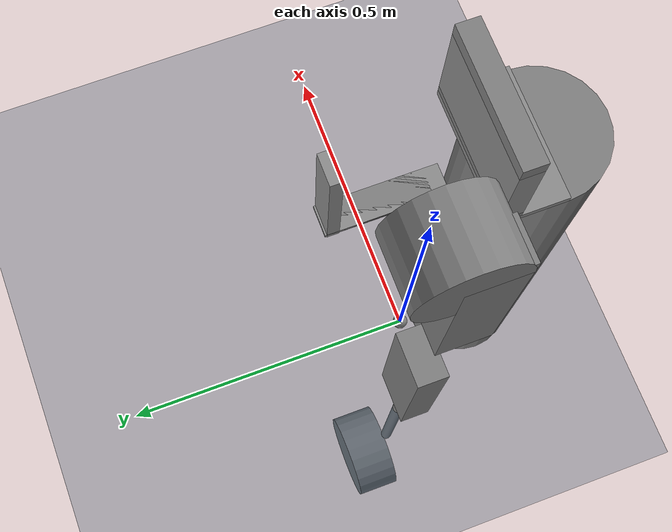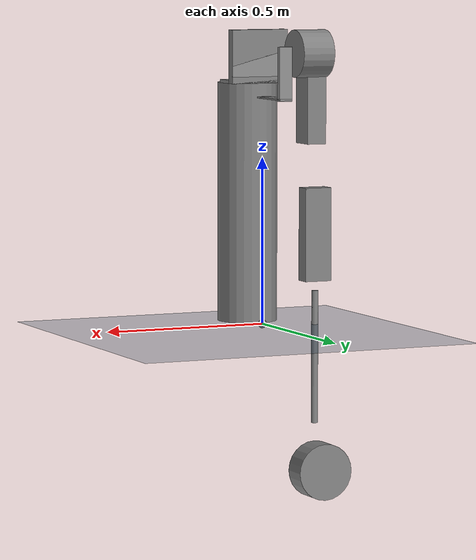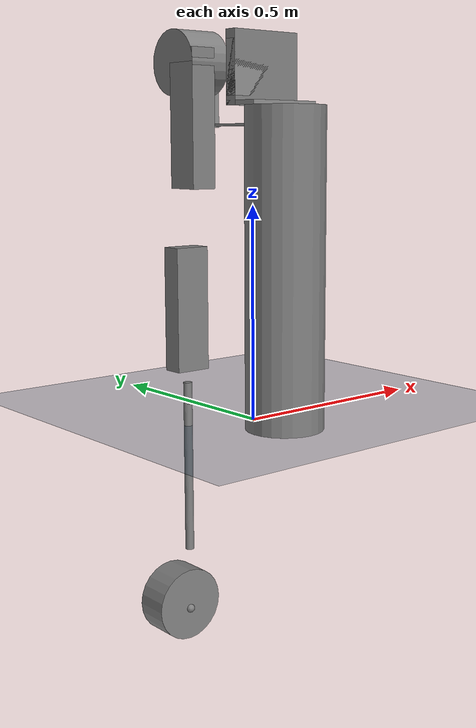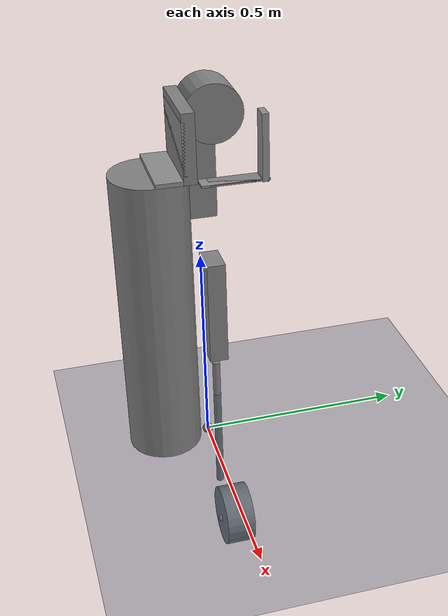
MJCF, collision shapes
<mujoco model="KirinApollo_scene">
  <include file="KirinApollo.xml"/>
  <statistic center="0 0 0.1" extent="0.8"/>

  <visual>
    <map force="0.1" zfar="30"/>
    <rgba haze="0.15 0.25 0.35 1"/>
    <quality shadowsize="2048"/>
    <global offwidth="800" offheight="800"/>
  </visual>

  <default>
    <default class="KirinApollo_scene">
      <default class="visual_ball">
        <geom type="mesh" contype="0" conaffinity="0" group="2"/>
        <default class="ball">
            <geom material="ball"/>
        </default>
      </default>

      <default class="collision2">
          <geom contype="1" conaffinity="15" group="3" solref="0.001 0.62"  solimp="0.9 0.95"/>
      </default>
    </default>
  </default>

  <asset>
    <texture type="skybox" builtin="gradient" rgb1="0.3 0.5 0.7" rgb2="0 0 0" width="512" height="3072"/>
    <texture type="2d" name="groundplane" builtin="checker" mark="edge"
      rgb1="0.2 0.3 0.4" rgb2="0.1 0.2 0.3"
      markrgb="0.8 0.8 0.8" width="300" height="300"/>
    <material name="groundplane" texture="groundplane" texuniform="true" texrepeat="5 5" reflectance="0.2"/>

    <material name="ball" specular="0" shininess="0.25" rgba="1.0 0.9 0.0 1"/>
    <mesh   name="badminton"                          file="Shutt.STL" />
  </asset>

  <worldbody>
    <light pos="0 0 1.5" dir="0 0 -1" directional="true" castshadow="false"/>
    <geom name="floor" pos="0 0 0" size="0 0 .125" type="plane" contype="1" conaffinity="3" material="groundplane" solimp="0.005 1"  condim="6" friction="0.4 0.6 0.8"/>
    <body name="Shutt" pos="0 0.0 0.0" childclass="KirinApollo_scene" euler=" 0 0 0">
        <geom class="ball" mesh="badminton"/>
        <geom class="collision2" name="shutt" type="sphere" size="0.013" pos="0 0.0 0" friction="0.4 0.6 0.8" condim="6"/>
        <site name="ShuttIMU" size="0.01" pos="0 0.0 0" group="0"/>
        <inertial pos="0.0 0.0 0.0" mass="0.006"  diaginertia="0.000001  0.000001  0.000001"/>
        <joint name="freeball"  pos="0 0 0" type="free" damping="0.0"/>

    </body>

  </worldbody>

  <sensor>
      <accelerometer name="ShuttAcc" site="ShuttIMU" noise="1e-2"/>
      <gyro name="ShuttGyro" site="ShuttIMU" noise="5e-4"/>
      <velocimeter name="ShuttVel" site="ShuttIMU" noise="5e-4"/>
      <touch name="ShuttTouch" site="ShuttIMU"/>
  </sensor>

</mujoco>

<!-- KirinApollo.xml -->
<mujoco model="KirinApollo">

  <compiler eulerseq="xyz" angle="radian" meshdir="meshes" texturedir="meshes" autolimits="true"/>
  <option timestep="0.001"/>

  <default>
    <default class="KirinApollo">
      <default class="visual">
          <geom type="mesh" contype="0" conaffinity="0" group="2"/>
          <default class="abad_pitch">
            <geom material="abad_pitch"/>
          </default>
          <default class="link_upper">
            <geom material="link_upper"/>
          </default>
          <default class="link_low">
            <geom material="link_low"/>
          </default>
          <default class="racket">
            <geom material="racket"/>
          </default>
      </default>

      <default class="collision">
          <geom condim="3"  group="3"  solref="0.001 0.6"  solimp="0.9 0.95"/>
          <default class="base_collision">
              <!-- 0001 and 0110 -->
              <geom contype="1" conaffinity="6"/>
          </default>
          <default class="upper_collision">
              <!-- 0010 and 0001 -->
              <geom contype="2" conaffinity="1"/>
          </default>
          <default class="lower_collision">
              <!-- 0100 and 1010 -->
              <geom contype="4" conaffinity="10"/>
          </default>
          <default class="racket_collision">
              <!-- 1000 and 0111 -->
              <geom contype="8" conaffinity="7"/>
          </default>
      </default>

      <!--
          1、max speed，rpm
          2、critical speed，rpm
          3、inertia of motor，kgm^2
      -->
      <default class="Shoulder_motor_24_roll">
        <motor ctrlrange="-15 15" user="2425 1604 0.0003"/>
      </default>
      <default class="Shoulder_motor_24_pitch">
        <motor ctrlrange="-15 15" user="2425 1604 0.0003"/>
      </default>
      <default class="Elbow_motor_15">
        <motor ctrlrange="-15 15" user="2425 1604 0.0003"/>
      </default>
      <default class="Wrist_motor_10_pitch">
        <motor ctrlrange="-2.3 2.3" user="4150 3600 0.000048"/>
      </default>
    </default>
  </default>

  <asset>

    <material name="abad_pitch" specular="0" shininess="0.25" rgba="0.55 0.55 0.55 1"/>
    <material name="link_upper" specular="0" shininess="0.25" rgba="0.345 0.725 1 1"/>
    <material name="link_low" specular="0" shininess="0.25" rgba="0.345 0.725 0.467 1"/>
    <material name="motor" specular="0" shininess="0.25" rgba="0.2 0.2 0.2 1"/>
    <material name="racket" specular="0" shininess="0.25" rgba="0.94 0.94 0.94 1"/>

    <mesh   name="Shoulder"                      file="FL_Hip.stl" />
    <mesh   name="UpperArm"                      file="FL_Thigh.stl"/>
    <mesh   name="ForeArm"                       file="forearm.STL"/>
    <mesh   name="Racket"                        file="racket.STL" />
  </asset>

  <worldbody>
    <body name="Body" pos="0.0 -0.11 0.0" childclass="KirinApollo" euler=" 0 0 0">

        <light name="spotlight" mode="track" pos="0 0 3" dir="0 0 -1"  castshadow="false"/>
        <light name="front" mode="track" pos="3 0.2 1.5" dir="-1 0 0" castshadow="false"/>
        <geom class="base_collision" name="base_pillar" type="cylinder" size="0.09 0.36" pos="0 0 0.36"/>
        <geom class="abad_pitch" type="box" size="0.09 0.046 0.005" pos="0 0.046 0.725"/>
        <geom class="abad_pitch" type="box" size="0.09 0.015 0.06" pos="0 0.077 0.80"/>
        <geom class="base_collision" name="roll_fixed" type="box" size="0.09 0.015 0.08" pos="0 0.077 0.80"/>
        <geom class="abad_pitch" type="box" size="0.02 0.08 0.0025" pos="0 0.1955 0.68"/>
        <geom class="base_collision" name="support_part" type="box" size="0.02 0.06 0.0025" pos="0 0.1955 0.68"/>
        <geom class="abad_pitch" type="box" size="0.02 0.008 0.08" pos="0 0.265 0.755"/>

        <camera name="side_view" pos="0 -2 -0.5" euler="1.57 0 0" mode="track"/>
        <camera name="front_view" pos="2 0 -0.5" euler="0 1.57 1.57" mode="track"/>
        <camera name="top_view" pos="0 0 2" euler="0 0 0" mode="track"/>

        <body name="Shouler" pos="0 0.171 0.81">

            <geom class="abad_pitch" mesh="Shoulder" euler="0 0 1.57"/>
            <inertial pos="-3.14e-05 0.0031055 0.0008517" euler="0 0 1.57" mass="3.16" diaginertia="0.00785719 0.00691005 0.00615485"/>
            <joint name="ShoulderRoll" pos="0 0 0" axis="0 1 0" range="-0.8 3.14" actuatorfrcrange="-350 350" damping="0.01" limited="true"/>

            <body name="UpperArm" pos="-0.135 0.0 0.0">
                <geom class="link_upper" mesh="UpperArm"  euler="0 0 1.57"/>
                <geom class="upper_collision" name="shoulder" type="cylinder" size="0.071 0.05" pos="0.01 0 0" euler="0 1.57 0"/>
                <geom class="upper_collision" name="upper" type="box" size="0.03 0.04 0.15" pos="-0.01 -0.03 -0.12"/>
                <inertial pos="0.018974 -0.0025376 -0.0504122"  euler="0 0 1.57" mass="5.25" diaginertia="0.0712873 0.070959 0.011287"/>
                <joint name="ShoulderPitch" pos="0 0 0" axis="1 0 0" damping="0.05" range="-1.57 4.8"  limited="true"/>

                <body name="ForeArm" pos="-0.01 0 -0.34">
                    <geom class="link_low" mesh="ForeArm"/>
                    <geom class="lower_collision" name="lower" type="box" size="0.042 0.024 0.14" pos="0.0 0.0 -0.2"/>
                    <inertial pos="0.0 0.0 -0.243" mass="1.58"  diaginertia="0.02511  0.02527  0.00124"/>
                    <joint name="Elbow" pos="0 0 0" axis="1 0 0" damping="0.05" range="0.3 2.5"  limited="true"/>

                    <body name="racket" pos="0 0 -0.32">
                        <joint name="WristPitch" pos="0 0 0" axis="1 0 0" damping="0.05" range="-1.3 1.3"  limited="true"/>
                        <geom class="racket" mesh="Racket" pos="0 0 -0.055"/>
                        <geom class="racket_collision" name="racket1" type="cylinder" size="0.01 0.2" pos="0.0 0.0 -0.25"/>
                        <site name="HandIMU" size="0.01" pos="0 0 -0.1" group="0"/>
                        <site name="EndIMU" size="0.01" pos="0 0 -0.6" group="0"/>
                        <geom class="racket_collision" name="racket2" type="cylinder" size="0.085 0.04" pos="0 0.04 -0.59" euler="1.57 0 0"  friction="0.8 0.8 0.8"/>
                        <inertial pos="0.0 0.0 -0.35" mass="0.09"  diaginertia="0.004425  0.004448  0.000227"/>
                    </body>
                </body>
            </body>
        </body>
    </body>

  </worldbody>

  <actuator>
      <motor class = "Shoulder_motor_24_roll" name="ShoulderRoll" joint="ShoulderRoll" gear="24"/>
      <motor class = "Shoulder_motor_24_pitch" name="ShoulderPitch" joint="ShoulderPitch" gear="24"/>
      <motor class = "Elbow_motor_15" name="Elbow" joint="Elbow" gear="15"/>
      <motor class = "Wrist_motor_10_pitch" name="WristPitch" joint="WristPitch" gear="10"/>
  </actuator>

  <sensor>
      <accelerometer name="HnadAcc" site="HandIMU" noise="1e-2"/>
      <gyro name="HandGyro" site="HandIMU" noise="5e-4"/>
      <velocimeter name="HandVel" site="HandIMU" noise="5e-4"/>

      <accelerometer name="EndAcc" site="EndIMU" noise="1e-2"/>
      <gyro name="EndGyro" site="EndIMU" noise="5e-4"/>
      <velocimeter name="EndVel" site="EndIMU" noise="5e-4"/>
      <touch name="EndTouch" site="EndIMU"/>
  </sensor>
</mujoco>
